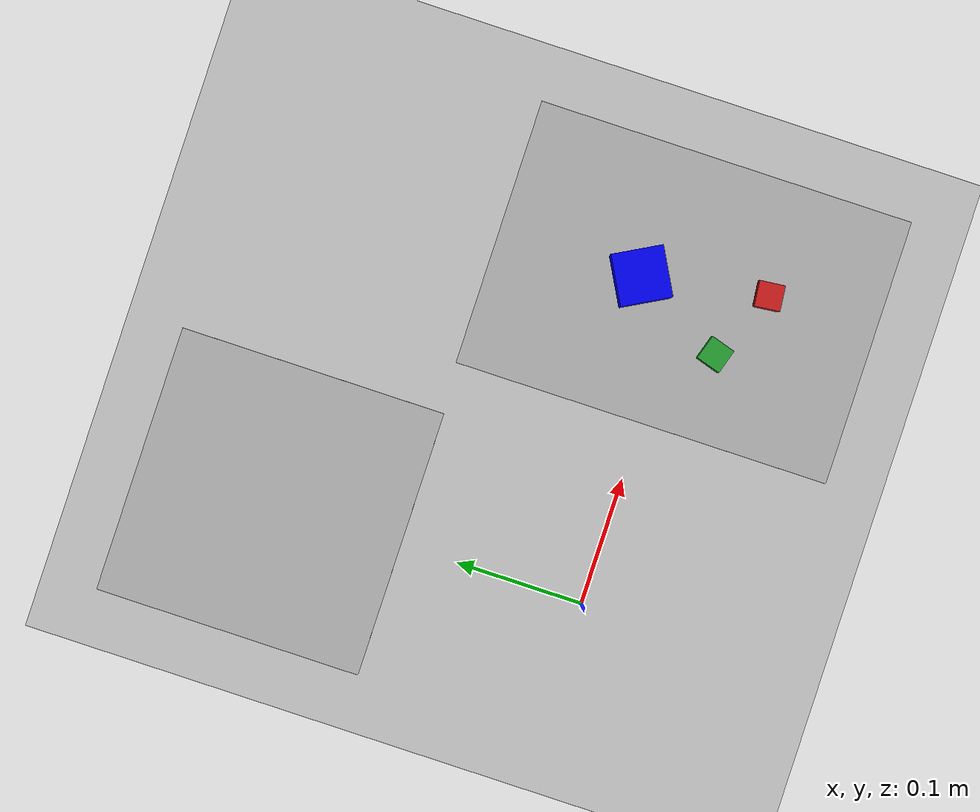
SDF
<sdf version='1.6'>
    <world name='default'>
        <!-- A global light source -->
        <include>
            <uri>model://sun</uri>
        </include>

        <!-- A ground plane -->
        <include>
            <uri>model://ground_plane</uri>
        </include>

        <!-- spotlight_1 -->
        <light type="spot" name="spotlight_1">
            <pose>0 0 2 0 0 0</pose>
            <direction>0 0 -1</direction>
            <diffuse>1 1 1 1</diffuse>
            <attenuation>
                <range>20</range>
                <constant>0.3</constant>
                <linear>0.01</linear>
            </attenuation>
            <spot>
                <inner_angle>1.0</inner_angle>
                <outer_angle>1.0</outer_angle>
                <falloff>1.0</falloff>
            </spot>
        </light>

        <!-- Niryo Workspace -->
        <model name='workspace_1'>
            <include>
                <uri>model://workspace_1</uri>
            </include>
            <pose frame=''>0.25 0.0 0.0005 0.0 0.0 0.0</pose>
        </model>

        <!-- Place Workspace -->
        <model name='workspace_grille'>
            <include>
                <uri>model://workspace_grille</uri>
            </include>
            <pose frame=''>0.0 0.25 0.0005 0.0 0.0 1.57</pose>
        </model>

        <!--CUBES-->
        <model name='cube_blue'>
            <include>
                <uri>model://cube_blue</uri>
            </include>
            <pose frame=''>0.25 0.0357 0.011 0.0 0.0 0.5</pose>
        </model>

        <model name='cube_red'>
            <include>
                <uri>model://cube_red</uri>
            </include>
            <pose frame=''>0.267 -0.062 0.011 0.0 0.0 0.1</pose>
        </model>

        <model name='cube_green'>
            <include>
                <uri>model://cube_green</uri>
            </include>
            <pose frame=''>0.212 -0.0369 0.011 0 0 -0.3</pose>
        </model>
        <physics name='default_physics' default='0' type='ode'>
            <max_step_size>0.001</max_step_size>
            <real_time_factor>1</real_time_factor>
            <real_time_update_rate>1000</real_time_update_rate>
        </physics>
        <!--GUI-->
        <gui fullscreen='0'>
            <camera name='user_camera'>
                <pose frame=''>-0.10 1.0 1.1 0 0.785398 -1.570794</pose>
                <view_controller>orbit</view_controller>
                <projection_type>perspective</projection_type>
            </camera>
        </gui>

    </world>
</sdf>

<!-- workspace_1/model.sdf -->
<sdf version='1.6'>
    <model name='Workspace1'>
        <link name='workspace_link'>
            <inertial>
                <mass>1000.0</mass>
                <inertia>
                    <ixx>4.508</ixx>
                    <ixy>0</ixy>
                    <ixz>0</ixz>
                    <iyy>8.184</iyy>
                    <iyz>0</iyz>
                    <izz>11.026</izz>
                </inertia>
                <pose frame=''>0 0 0 0 -0 0</pose>
            </inertial>
            <pose frame=''>0 0 0 0 -0 0</pose>
            <gravity>1</gravity>
            <self_collide>0</self_collide>
            <kinematic>0</kinematic>
            <enable_wind>0</enable_wind>

            <visual name='visual'>
                <cast_shadows>false</cast_shadows>
                <pose frame=''>0 0 0 0 0 0</pose>
                <geometry>
                    <box>
                        <size>0.21 0.297 0.001</size>
                    </box>
                </geometry>
                <material>
                    <script>
                        <uri>media://materials/scripts/workspace.material</uri>
                        <name>Niryo/Workspace1</name>
                    </script>
                </material>

                <transparency>0</transparency>
                <cast_shadows>1</cast_shadows>
            </visual>
            <collision name='collision'>
                <laser_retro>0</laser_retro>
                <max_contacts>10</max_contacts>
                <pose frame=''>0 0 0 0 -0 0</pose>
                <geometry>
                    <box>
                        <size>0.21 0.297 0.001</size>
                    </box>
                </geometry>
                <surface>
                    <friction>
                        <ode>
                            <mu>1</mu>
                            <mu2>1</mu2>
                            <fdir1>0 0 0</fdir1>
                            <slip1>0</slip1>
                            <slip2>0</slip2>
                        </ode>
                        <torsional>
                            <coefficient>1</coefficient>
                            <patch_radius>0</patch_radius>
                            <surface_radius>0</surface_radius>
                            <use_patch_radius>1</use_patch_radius>
                            <ode>
                                <slip>0</slip>
                            </ode>
                        </torsional>
                    </friction>
                    <bounce>
                        <restitution_coefficient>0</restitution_coefficient>
                        <threshold>1e+06</threshold>
                    </bounce>
                    <contact>
                        <collide_without_contact>0</collide_without_contact>
                        <collide_without_contact_bitmask>1</collide_without_contact_bitmask>
                        <collide_bitmask>1</collide_bitmask>
                        <ode>
                            <soft_cfm>0</soft_cfm>
                            <soft_erp>0.2</soft_erp>
                            <kp>1e+13</kp>
                            <kd>1</kd>
                            <max_vel>0.01</max_vel>
                            <min_depth>0</min_depth>
                        </ode>
                        <bullet>
                            <split_impulse>1</split_impulse>
                            <split_impulse_penetration_threshold>-0.01</split_impulse_penetration_threshold>
                            <soft_cfm>0</soft_cfm>
                            <soft_erp>0.2</soft_erp>
                            <kp>1e+13</kp>
                            <kd>1</kd>
                        </bullet>
                    </contact>
                </surface>
            </collision>
        </link>
        <static>0</static>
        <allow_auto_disable>1</allow_auto_disable>
    </model>
</sdf>

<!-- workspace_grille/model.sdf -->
<sdf version='1.6'>
    <model name='WorkspaceGrille'>
        <link name='workspace_link'>
            <inertial>
                <mass>1000.0</mass>
                <inertia>
                    <ixx>4.508</ixx>
                    <ixy>0</ixy>
                    <ixz>0</ixz>
                    <iyy>8.184</iyy>
                    <iyz>0</iyz>
                    <izz>11.026</izz>
                </inertia>
                <pose frame=''>0 0 0 0 -0 0</pose>
            </inertial>
            <pose frame=''>0 0 0 0 -0 0</pose>
            <gravity>1</gravity>
            <self_collide>0</self_collide>
            <kinematic>0</kinematic>
            <enable_wind>0</enable_wind>

            <visual name='visual'>
                <cast_shadows>false</cast_shadows>
                <pose frame=''>0 0 0 0 0 0</pose>
                <geometry>
                    <box>
                        <size>0.21 0.21 0.001</size>
                    </box>
                </geometry>
                <material>
                    <script>
                        <uri>media://materials/scripts/workspace.material</uri>
                        <name>Niryo/WorkspaceGrille</name>
                    </script>
                </material>

                <transparency>0</transparency>
                <cast_shadows>1</cast_shadows>
            </visual>
            <collision name='collision'>
                <laser_retro>0</laser_retro>
                <max_contacts>10</max_contacts>
                <pose frame=''>0 0 0 0 -0 0</pose>
                <geometry>
                    <box>
                        <size>0.21 0.21 0.001</size>
                    </box>
                </geometry>
                <surface>
                    <friction>
                        <ode>
                            <mu>1</mu>
                            <mu2>1</mu2>
                            <fdir1>0 0 0</fdir1>
                            <slip1>0</slip1>
                            <slip2>0</slip2>
                        </ode>
                        <torsional>
                            <coefficient>1</coefficient>
                            <patch_radius>0</patch_radius>
                            <surface_radius>0</surface_radius>
                            <use_patch_radius>1</use_patch_radius>
                            <ode>
                                <slip>0</slip>
                            </ode>
                        </torsional>
                    </friction>
                    <bounce>
                        <restitution_coefficient>0</restitution_coefficient>
                        <threshold>1e+06</threshold>
                    </bounce>
                    <contact>
                        <collide_without_contact>0</collide_without_contact>
                        <collide_without_contact_bitmask>1</collide_without_contact_bitmask>
                        <collide_bitmask>1</collide_bitmask>
                        <ode>
                            <soft_cfm>0</soft_cfm>
                            <soft_erp>0.2</soft_erp>
                            <kp>1e+13</kp>
                            <kd>1</kd>
                            <max_vel>0.01</max_vel>
                            <min_depth>0</min_depth>
                        </ode>
                        <bullet>
                            <split_impulse>1</split_impulse>
                            <split_impulse_penetration_threshold>-0.01</split_impulse_penetration_threshold>
                            <soft_cfm>0</soft_cfm>
                            <soft_erp>0.2</soft_erp>
                            <kp>1e+13</kp>
                            <kd>1</kd>
                        </bullet>
                    </contact>
                </surface>
            </collision>
        </link>
        <static>0</static>
        <allow_auto_disable>1</allow_auto_disable>
    </model>
</sdf>

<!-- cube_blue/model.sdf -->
<sdf version="1.5">
  <model name="cube_blue">
    <link name="link">
      <pose>0 0 0.02 0 0 0</pose>
      <inertial>
        <mass>0.027</mass>
        <inertia>
          <ixx>2.3541666666666672e-05</ixx>
          <ixy>0</ixy>
          <ixz>0</ixz>
          <iyy>2.3541666666666672e-05</iyy>
          <iyz>0</iyz>
          <izz>2.3541666666666672e-05</izz>
        </inertia>
      </inertial>

      <collision name="collision">
        <geometry>
          <box>
            <size>0.04 0.04 0.04</size>
          </box>
        </geometry>
        <surface>
          <contact>
            <!-- Red Pine coefficients for longitudinal axis of the wood
                 according to:
                 http://www.fpl.fs.fed.us/documnts/fplgtr/fplgtr113/ch04.pdf -->
            <poissons_ratio>0.347</poissons_ratio>
            <elastic_modulus>8.8e+09</elastic_modulus>
            <ode>
              <kp>100000</kp>
              <kd>1</kd>
              <max_vel>1.0</max_vel>
              <min_depth>0.001</min_depth>
            </ode>
          </contact>
          <friction>
            <torsional>
              <coefficient>1.0</coefficient>
              <use_patch_radius>0</use_patch_radius>
              <surface_radius>0.05</surface_radius>
            </torsional>
          </friction>
        </surface>
      </collision>

      <visual name="visual">
        <geometry>
          <box>
            <size>0.04 0.04 0.04</size>
          </box>
        </geometry>
        <material>
         <ambient>0 0 1 1</ambient>
				 <diffuse>0 0 1 1</diffuse>
				 <specular>0.1 0.1 0.1 1</specular>
				 <emissive>0 0 0 0</emissive>
        </material>
      </visual>

    </link>
  </model>
</sdf>

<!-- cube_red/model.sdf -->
<sdf version='1.6'>
  <model name='cube_red'>
    <link name='link_1'>
      <inertial>
        <mass>1e-4</mass>
        <inertia>
          <ixx>1.0e-8</ixx>
          <ixy>0</ixy>
          <ixz>0</ixz>
          <iyy>1.0e-8</iyy>
          <iyz>0</iyz>
          <izz>1.0e-8</izz>
        </inertia>
        <pose frame=''>0 0 0 0 -0 0</pose>
      </inertial>
      <pose frame=''>0 0 0 0 -0 0</pose>
      <gravity>1</gravity>
      <self_collide>0</self_collide>
      <kinematic>0</kinematic>
      <enable_wind>0</enable_wind>
      <visual name='visual'>
        <pose frame=''>0 0 0 0 -0 0</pose>
        <geometry>
          <box>
            <size>0.02 0.02 0.02</size>
          </box>
        </geometry>
        <material>
          <lighting>1</lighting>
          <script>
            <uri>file://media/materials/scripts/gazebo.material</uri>
            <name>Gazebo/Grey</name>
          </script>
          <shader type='vertex'>
            <normal_map>__default__</normal_map>
          </shader>
          <ambient>0.643 0 0 1</ambient>
          <diffuse>0.835 0.114 0.114 1</diffuse>
          <specular>0.333 0.341 0.325 1</specular>
          <emissive>0 0 0 1</emissive>
        </material>
        <transparency>0</transparency>
        <cast_shadows>1</cast_shadows>
      </visual>
      <collision name='collision'>
        <laser_retro>0</laser_retro>
        <max_contacts>50</max_contacts>
        <pose frame=''>0 0 0 0 -0 0</pose>
        <geometry>
          <box>
            <size>0.02 0.02 0.02</size>
          </box>
        </geometry>
        <surface>
          <friction>
            <ode>
              <mu>1e+6</mu>
              <mu2>1e+6</mu2>
            </ode>
            <torsional>
              <coefficient>1</coefficient>
              <patch_radius>0</patch_radius>
              <surface_radius>0</surface_radius>
              <use_patch_radius>1</use_patch_radius>
              <ode>
                <slip>0</slip>
              </ode>
            </torsional>
          </friction>
          <bounce>
            <restitution_coefficient>0</restitution_coefficient>
            <threshold>1e+06</threshold>
          </bounce>
          <contact>
            <collide_without_contact>0</collide_without_contact>
            <collide_without_contact_bitmask>1</collide_without_contact_bitmask>
            <collide_bitmask>1</collide_bitmask>
            <ode>
              <soft_cfm>0</soft_cfm>
              <soft_erp>0.2</soft_erp>
              <kp>1e+13</kp>
              <kd>1</kd>
              <max_vel>0.0</max_vel>
              <min_depth>0.002</min_depth>
            </ode>
            <bullet>
              <split_impulse>1</split_impulse>
              <split_impulse_penetration_threshold>-0.01</split_impulse_penetration_threshold>
              <soft_cfm>0</soft_cfm>
              <soft_erp>0.2</soft_erp>
              <kp>1e+13</kp>
              <kd>1</kd>
            </bullet>
          </contact>
        </surface>
      </collision>
    </link>
    <static>0</static>
    <allow_auto_disable>1</allow_auto_disable>
  </model>
</sdf>

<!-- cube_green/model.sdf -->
<sdf version='1.6'>
  <model name='cube_green'>
    <link name='link_1'>
      <inertial>
        <mass>1e-4</mass>
        <inertia>
          <ixx>1.0e-8</ixx>
          <ixy>0</ixy>
          <ixz>0</ixz>
          <iyy>1.0e-8</iyy>
          <iyz>0</iyz>
          <izz>1.0e-8</izz>
        </inertia>
        <pose frame=''>0 0 0 0 -0 0</pose>
      </inertial>
      <pose frame=''>0 0 0 0 -0 0</pose>
      <gravity>1</gravity>
      <self_collide>0</self_collide>
      <kinematic>0</kinematic>
      <enable_wind>0</enable_wind>
      <visual name='visual'>
        <pose frame=''>0 0 0 0 -0 0</pose>
        <geometry>
          <box>
            <size>0.02 0.02 0.02</size>
          </box>
        </geometry>
        <material>
          <lighting>1</lighting>
          <script>
            <uri>file://media/materials/scripts/gazebo.material</uri>
            <name>Gazebo/Green</name>
          </script>
          <shader type='vertex'>
            <normal_map>__default__</normal_map>
          </shader>
          <ambient>0.208 0.706 0.298 1</ambient>
          <diffuse>0.451 0.824 0.082 1</diffuse>
          <specular>0.18 0.204 0.212 1</specular>
          <emissive>0 0 0 1</emissive>
        </material>
        <transparency>0</transparency>
        <cast_shadows>1</cast_shadows>
      </visual>
      <collision name='collision'>
        <laser_retro>0</laser_retro>
        <max_contacts>50</max_contacts>
        <pose frame=''>0 0 0 0 -0 0</pose>
        <geometry>
          <box>
            <size>0.02 0.02 0.02</size>
          </box>
        </geometry>
        <surface>
          <friction>
            <ode>
              <mu>1e+6</mu>
              <mu2>1e+6</mu2>
            </ode>
            <torsional>
              <coefficient>1</coefficient>
              <patch_radius>0</patch_radius>
              <surface_radius>0</surface_radius>
              <use_patch_radius>1</use_patch_radius>
              <ode>
                <slip>0</slip>
              </ode>
            </torsional>
          </friction>
          <bounce>
            <restitution_coefficient>0</restitution_coefficient>
            <threshold>1e+06</threshold>
          </bounce>
          <contact>
            <collide_without_contact>0</collide_without_contact>
            <collide_without_contact_bitmask>1</collide_without_contact_bitmask>
            <collide_bitmask>1</collide_bitmask>
            <ode>
              <soft_cfm>0</soft_cfm>
              <soft_erp>0.2</soft_erp>
              <kp>1e+13</kp>
              <kd>1</kd>
              <max_vel>0.0</max_vel>
              <min_depth>0.002</min_depth>
            </ode>
            <bullet>
              <split_impulse>1</split_impulse>
              <split_impulse_penetration_threshold>-0.01</split_impulse_penetration_threshold>
              <soft_cfm>0</soft_cfm>
              <soft_erp>0.2</soft_erp>
              <kp>1e+13</kp>
              <kd>1</kd>
            </bullet>
          </contact>
        </surface>
      </collision>
    </link>
    <static>0</static>
    <allow_auto_disable>1</allow_auto_disable>
  </model>
</sdf>
